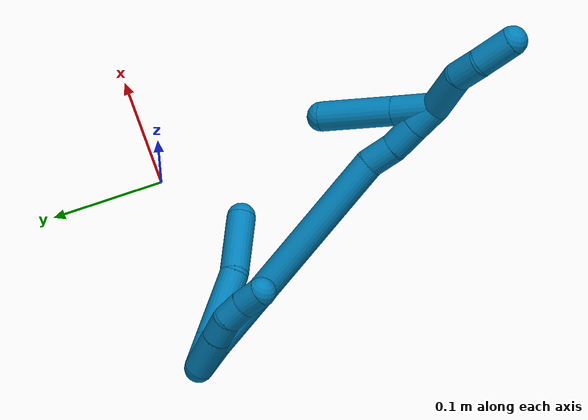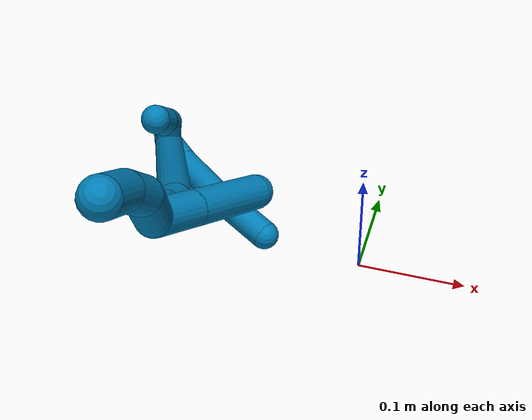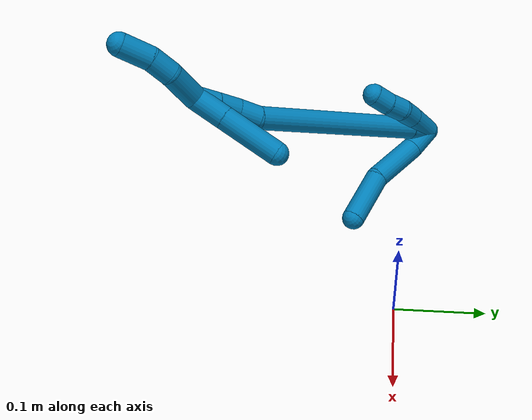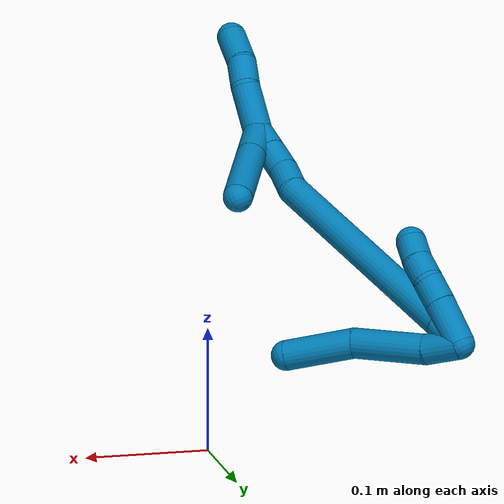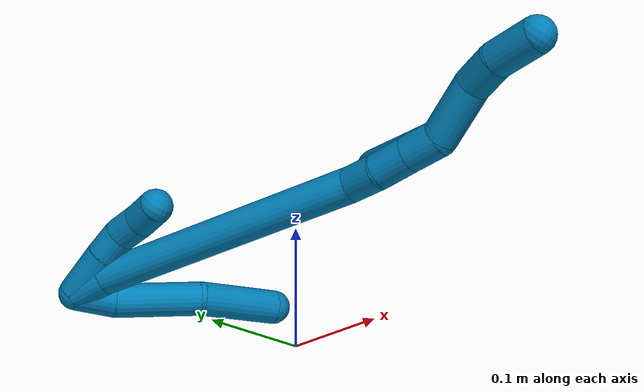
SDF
<sdf version="1.7">
 <world name="default">
  <model name="9">
   <static>0</static>
   <link name="9">
    <collision name="collision-cylinder-e_1_2_8">
     <pose>0.011953 -0.007561 0.00448 1.0359 0.936788 0.561398</pose>
     <geometry><cylinder><radius>0.0125</radius><length>0.029672</length></cylinder></geometry>
     <surface>
      <friction><ode><mu>1.16</mu><mu2>1.16</mu2><slip1>0</slip1><slip2>0</slip2></ode></friction>
      <contact><ode><kp>1e+06</kp><kd>1</kd><max_vel>0</max_vel><min_depth>0.001</min_depth></ode></contact>
     </surface>
    </collision>
    <visual name="visual-cylinder-e_1_2_8">
     <pose>0.011953 -0.007561 0.00448 1.0359 0.936788 0.561398</pose>
     <geometry><cylinder><radius>0.0125</radius><length>0.029672</length></cylinder></geometry>
     <material><ambient>0 0.490196 0.709804 1</ambient></material>
    </visual>
    <collision name="collision-cylinder-e_2_8_9">
     <pose>0.046603 -0.029372 0.025018 0.725815 0.81319 0.324143</pose>
     <geometry><cylinder><radius>0.0125</radius><length>0.062485</length></cylinder></geometry>
     <surface>
      <friction><ode><mu>1.16</mu><mu2>1.16</mu2><slip1>0</slip1><slip2>0</slip2></ode></friction>
      <contact><ode><kp>1e+06</kp><kd>1</kd><max_vel>0</max_vel><min_depth>0.001</min_depth></ode></contact>
     </surface>
    </collision>
    <visual name="visual-cylinder-e_2_8_9">
     <pose>0.046603 -0.029372 0.025018 0.725815 0.81319 0.324143</pose>
     <geometry><cylinder><radius>0.0125</radius><length>0.062485</length></cylinder></geometry>
     <material><ambient>0 0.490196 0.709804 1</ambient></material>
    </visual>
    <collision name="collision-cylinder-e_3_9_6">
     <pose>0.095267 -0.053399 0.049236 0.875331 1.11486 0.567644</pose>
     <geometry><cylinder><radius>0.0125</radius><length>0.057843</length></cylinder></geometry>
     <surface>
      <friction><ode><mu>1.16</mu><mu2>1.16</mu2><slip1>0</slip1><slip2>0</slip2></ode></friction>
      <contact><ode><kp>1e+06</kp><kd>1</kd><max_vel>0</max_vel><min_depth>0.001</min_depth></ode></contact>
     </surface>
    </collision>
    <visual name="visual-cylinder-e_3_9_6">
     <pose>0.095267 -0.053399 0.049236 0.875331 1.11486 0.567644</pose>
     <geometry><cylinder><radius>0.0125</radius><length>0.057843</length></cylinder></geometry>
     <material><ambient>0 0.490196 0.709804 1</ambient></material>
    </visual>
    <collision name="collision-cylinder-e_1_2_10">
     <pose>-0.000402 -0.002097 0.018752 0.111338 -0.021299 -0.001187</pose>
     <geometry><cylinder><radius>0.0125</radius><length>0.037747</length></cylinder></geometry>
     <surface>
      <friction><ode><mu>1.16</mu><mu2>1.16</mu2><slip1>0</slip1><slip2>0</slip2></ode></friction>
      <contact><ode><kp>1e+06</kp><kd>1</kd><max_vel>0</max_vel><min_depth>0.001</min_depth></ode></contact>
     </surface>
    </collision>
    <visual name="visual-cylinder-e_1_2_10">
     <pose>-0.000402 -0.002097 0.018752 0.111338 -0.021299 -0.001187</pose>
     <geometry><cylinder><radius>0.0125</radius><length>0.037747</length></cylinder></geometry>
     <material><ambient>0 0.490196 0.709804 1</ambient></material>
    </visual>
    <collision name="collision-cylinder-e_2_10_11">
     <pose>-0.000648 -0.005617 0.04779 0.137528 0.014988 0.001032</pose>
     <geometry><cylinder><radius>0.0125</radius><length>0.02077</length></cylinder></geometry>
     <surface>
      <friction><ode><mu>1.16</mu><mu2>1.16</mu2><slip1>0</slip1><slip2>0</slip2></ode></friction>
      <contact><ode><kp>1e+06</kp><kd>1</kd><max_vel>0</max_vel><min_depth>0.001</min_depth></ode></contact>
     </surface>
    </collision>
    <visual name="visual-cylinder-e_2_10_11">
     <pose>-0.000648 -0.005617 0.04779 0.137528 0.014988 0.001032</pose>
     <geometry><cylinder><radius>0.0125</radius><length>0.02077</length></cylinder></geometry>
     <material><ambient>0 0.490196 0.709804 1</ambient></material>
    </visual>
    <collision name="collision-cylinder-e_3_11_12">
     <pose>-0.000904 -0.01164 0.067454 0.455961 -0.039359 -0.009133</pose>
     <geometry><cylinder><radius>0.0125</radius><length>0.020907</length></cylinder></geometry>
     <surface>
      <friction><ode><mu>1.16</mu><mu2>1.16</mu2><slip1>0</slip1><slip2>0</slip2></ode></friction>
      <contact><ode><kp>1e+06</kp><kd>1</kd><max_vel>0</max_vel><min_depth>0.001</min_depth></ode></contact>
     </surface>
    </collision>
    <visual name="visual-cylinder-e_3_11_12">
     <pose>-0.000904 -0.01164 0.067454 0.455961 -0.039359 -0.009133</pose>
     <geometry><cylinder><radius>0.0125</radius><length>0.020907</length></cylinder></geometry>
     <material><ambient>0 0.490196 0.709804 1</ambient></material>
    </visual>
    <collision name="collision-cylinder-e_4_12_5">
     <pose>-0.003275 -0.020824 0.085832 0.471266 -0.19165 -0.046147</pose>
     <geometry><cylinder><radius>0.0125</radius><length>0.020576</length></cylinder></geometry>
     <surface>
      <friction><ode><mu>1.16</mu><mu2>1.16</mu2><slip1>0</slip1><slip2>0</slip2></ode></friction>
      <contact><ode><kp>1e+06</kp><kd>1</kd><max_vel>0</max_vel><min_depth>0.001</min_depth></ode></contact>
     </surface>
    </collision>
    <visual name="visual-cylinder-e_4_12_5">
     <pose>-0.003275 -0.020824 0.085832 0.471266 -0.19165 -0.046147</pose>
     <geometry><cylinder><radius>0.0125</radius><length>0.020576</length></cylinder></geometry>
     <material><ambient>0 0.490196 0.709804 1</ambient></material>
    </visual>
    <collision name="collision-cylinder-e_1_2_13">
     <pose>0.002628 -0.005694 0.011855 0.447805 0.197228 0.045051</pose>
     <geometry><cylinder><radius>0.0125</radius><length>0.026823</length></cylinder></geometry>
     <surface>
      <friction><ode><mu>1.16</mu><mu2>1.16</mu2><slip1>0</slip1><slip2>0</slip2></ode></friction>
      <contact><ode><kp>1e+06</kp><kd>1</kd><max_vel>0</max_vel><min_depth>0.001</min_depth></ode></contact>
     </surface>
    </collision>
    <visual name="visual-cylinder-e_1_2_13">
     <pose>0.002628 -0.005694 0.011855 0.447805 0.197228 0.045051</pose>
     <geometry><cylinder><radius>0.0125</radius><length>0.026823</length></cylinder></geometry>
     <material><ambient>0 0.490196 0.709804 1</ambient></material>
    </visual>
    <collision name="collision-cylinder-e_2_13_14">
     <pose>0.027338 -0.062555 0.10609 0.555787 0.223885 0.064115</pose>
     <geometry><cylinder><radius>0.0125</radius><length>0.198918</length></cylinder></geometry>
     <surface>
      <friction><ode><mu>1.16</mu><mu2>1.16</mu2><slip1>0</slip1><slip2>0</slip2></ode></friction>
      <contact><ode><kp>1e+06</kp><kd>1</kd><max_vel>0</max_vel><min_depth>0.001</min_depth></ode></contact>
     </surface>
    </collision>
    <visual name="visual-cylinder-e_2_13_14">
     <pose>0.027338 -0.062555 0.10609 0.555787 0.223885 0.064115</pose>
     <geometry><cylinder><radius>0.0125</radius><length>0.198918</length></cylinder></geometry>
     <material><ambient>0 0.490196 0.709804 1</ambient></material>
    </visual>
    <collision name="collision-cylinder-e_3_14_15">
     <pose>0.048226 -0.121057 0.198541 0.629571 -0.095491 -0.031114</pose>
     <geometry><cylinder><radius>0.0125</radius><length>0.025033</length></cylinder></geometry>
     <surface>
      <friction><ode><mu>1.16</mu><mu2>1.16</mu2><slip1>0</slip1><slip2>0</slip2></ode></friction>
      <contact><ode><kp>1e+06</kp><kd>1</kd><max_vel>0</max_vel><min_depth>0.001</min_depth></ode></contact>
     </surface>
    </collision>
    <visual name="visual-cylinder-e_3_14_15">
     <pose>0.048226 -0.121057 0.198541 0.629571 -0.095491 -0.031114</pose>
     <geometry><cylinder><radius>0.0125</radius><length>0.025033</length></cylinder></geometry>
     <material><ambient>0 0.490196 0.709804 1</ambient></material>
    </visual>
    <collision name="collision-cylinder-e_4_15_16">
     <pose>0.047501 -0.134278 0.219591 0.492021 0.03753 0.009425</pose>
     <geometry><cylinder><radius>0.0125</radius><length>0.024932</length></cylinder></geometry>
     <surface>
      <friction><ode><mu>1.16</mu><mu2>1.16</mu2><slip1>0</slip1><slip2>0</slip2></ode></friction>
      <contact><ode><kp>1e+06</kp><kd>1</kd><max_vel>0</max_vel><min_depth>0.001</min_depth></ode></contact>
     </surface>
    </collision>
    <visual name="visual-cylinder-e_4_15_16">
     <pose>0.047501 -0.134278 0.219591 0.492021 0.03753 0.009425</pose>
     <geometry><cylinder><radius>0.0125</radius><length>0.024932</length></cylinder></geometry>
     <material><ambient>0 0.490196 0.709804 1</ambient></material>
    </visual>
    <collision name="collision-cylinder-e_5_16_1">
     <pose>0.048419 -0.146099 0.241159 0.510966 0.037112 0.009694</pose>
     <geometry><cylinder><radius>0.0125</radius><length>0.024294</length></cylinder></geometry>
     <surface>
      <friction><ode><mu>1.16</mu><mu2>1.16</mu2><slip1>0</slip1><slip2>0</slip2></ode></friction>
      <contact><ode><kp>1e+06</kp><kd>1</kd><max_vel>0</max_vel><min_depth>0.001</min_depth></ode></contact>
     </surface>
    </collision>
    <visual name="visual-cylinder-e_5_16_1">
     <pose>0.048419 -0.146099 0.241159 0.510966 0.037112 0.009694</pose>
     <geometry><cylinder><radius>0.0125</radius><length>0.024294</length></cylinder></geometry>
     <material><ambient>0 0.490196 0.709804 1</ambient></material>
    </visual>
    <collision name="collision-cylinder-e_1_1_17">
     <pose>0.045124 -0.153522 0.272144 0.072776 -0.181142 -0.006612</pose>
     <geometry><cylinder><radius>0.0125</radius><length>0.041581</length></cylinder></geometry>
     <surface>
      <friction><ode><mu>1.16</mu><mu2>1.16</mu2><slip1>0</slip1><slip2>0</slip2></ode></friction>
      <contact><ode><kp>1e+06</kp><kd>1</kd><max_vel>0</max_vel><min_depth>0.001</min_depth></ode></contact>
     </surface>
    </collision>
    <visual name="visual-cylinder-e_1_1_17">
     <pose>0.045124 -0.153522 0.272144 0.072776 -0.181142 -0.006612</pose>
     <geometry><cylinder><radius>0.0125</radius><length>0.041581</length></cylinder></geometry>
     <material><ambient>0 0.490196 0.709804 1</ambient></material>
    </visual>
    <collision name="collision-cylinder-e_2_17_18">
     <pose>0.037584 -0.159664 0.303655 0.396639 -0.305036 -0.061761</pose>
     <geometry><cylinder><radius>0.0125</radius><length>0.025267</length></cylinder></geometry>
     <surface>
      <friction><ode><mu>1.16</mu><mu2>1.16</mu2><slip1>0</slip1><slip2>0</slip2></ode></friction>
      <contact><ode><kp>1e+06</kp><kd>1</kd><max_vel>0</max_vel><min_depth>0.001</min_depth></ode></contact>
     </surface>
    </collision>
    <visual name="visual-cylinder-e_2_17_18">
     <pose>0.037584 -0.159664 0.303655 0.396639 -0.305036 -0.061761</pose>
     <geometry><cylinder><radius>0.0125</radius><length>0.025267</length></cylinder></geometry>
     <material><ambient>0 0.490196 0.709804 1</ambient></material>
    </visual>
    <collision name="collision-cylinder-e_3_18_4">
     <pose>0.031514 -0.173122 0.328629 0.565833 -0.137737 -0.0401</pose>
     <geometry><cylinder><radius>0.0125</radius><length>0.033151</length></cylinder></geometry>
     <surface>
      <friction><ode><mu>1.16</mu><mu2>1.16</mu2><slip1>0</slip1><slip2>0</slip2></ode></friction>
      <contact><ode><kp>1e+06</kp><kd>1</kd><max_vel>0</max_vel><min_depth>0.001</min_depth></ode></contact>
     </surface>
    </collision>
    <visual name="visual-cylinder-e_3_18_4">
     <pose>0.031514 -0.173122 0.328629 0.565833 -0.137737 -0.0401</pose>
     <geometry><cylinder><radius>0.0125</radius><length>0.033151</length></cylinder></geometry>
     <material><ambient>0 0.490196 0.709804 1</ambient></material>
    </visual>
    <collision name="collision-cylinder-e_1_1_19">
     <pose>0.057657 -0.140071 0.241821 -2.2634 0.514477 -1.02113</pose>
     <geometry><cylinder><radius>0.0125</radius><length>0.035715</length></cylinder></geometry>
     <surface>
      <friction><ode><mu>1.16</mu><mu2>1.16</mu2><slip1>0</slip1><slip2>0</slip2></ode></friction>
      <contact><ode><kp>1e+06</kp><kd>1</kd><max_vel>0</max_vel><min_depth>0.001</min_depth></ode></contact>
     </surface>
    </collision>
    <visual name="visual-cylinder-e_1_1_19">
     <pose>0.057657 -0.140071 0.241821 -2.2634 0.514477 -1.02113</pose>
     <geometry><cylinder><radius>0.0125</radius><length>0.035715</length></cylinder></geometry>
     <material><ambient>0 0.490196 0.709804 1</ambient></material>
    </visual>
    <collision name="collision-cylinder-e_2_19_3">
     <pose>0.082285 -0.10647 0.214174 -2.25698 0.515345 -1.01555</pose>
     <geometry><cylinder><radius>0.0125</radius><length>0.064285</length></cylinder></geometry>
     <surface>
      <friction><ode><mu>1.16</mu><mu2>1.16</mu2><slip1>0</slip1><slip2>0</slip2></ode></friction>
      <contact><ode><kp>1e+06</kp><kd>1</kd><max_vel>0</max_vel><min_depth>0.001</min_depth></ode></contact>
     </surface>
    </collision>
    <visual name="visual-cylinder-e_2_19_3">
     <pose>0.082285 -0.10647 0.214174 -2.25698 0.515345 -1.01555</pose>
     <geometry><cylinder><radius>0.0125</radius><length>0.064285</length></cylinder></geometry>
     <material><ambient>0 0.490196 0.709804 1</ambient></material>
    </visual>
    <collision name="collision-sphere-3">
     <pose>0.098126 -0.084832 0.196453 0 -0 0</pose>
     <geometry><sphere><radius>0.0125</radius></sphere></geometry>
     <surface>
      <friction><ode><mu>1.16</mu><mu2>1.16</mu2><slip1>0</slip1><slip2>0</slip2></ode></friction>
      <contact><ode><kp>1e+06</kp><kd>1</kd><max_vel>0</max_vel><min_depth>0.001</min_depth></ode></contact>
     </surface>
    </collision>
    <visual name="visual-sphere-3">
     <pose>0.098126 -0.084832 0.196453 0 -0 0</pose>
     <geometry><sphere><radius>0.0125</radius></sphere></geometry>
     <material><ambient>0 0.490196 0.709804 1</ambient></material>
    </visual>
    <collision name="collision-sphere-19">
     <pose>0.066444 -0.128108 0.231894 0 -0 0</pose>
     <geometry><sphere><radius>0.0125</radius></sphere></geometry>
     <surface>
      <friction><ode><mu>1.16</mu><mu2>1.16</mu2><slip1>0</slip1><slip2>0</slip2></ode></friction>
      <contact><ode><kp>1e+06</kp><kd>1</kd><max_vel>0</max_vel><min_depth>0.001</min_depth></ode></contact>
     </surface>
    </collision>
    <visual name="visual-sphere-19">
     <pose>0.066444 -0.128108 0.231894 0 -0 0</pose>
     <geometry><sphere><radius>0.0125</radius></sphere></geometry>
     <material><ambient>0 0.490196 0.709804 1</ambient></material>
    </visual>
    <collision name="collision-sphere-11">
     <pose>-0.000493 -0.00704 0.058076 0 -0 0</pose>
     <geometry><sphere><radius>0.0125</radius></sphere></geometry>
     <surface>
      <friction><ode><mu>1.16</mu><mu2>1.16</mu2><slip1>0</slip1><slip2>0</slip2></ode></friction>
      <contact><ode><kp>1e+06</kp><kd>1</kd><max_vel>0</max_vel><min_depth>0.001</min_depth></ode></contact>
     </surface>
    </collision>
    <visual name="visual-sphere-11">
     <pose>-0.000493 -0.00704 0.058076 0 -0 0</pose>
     <geometry><sphere><radius>0.0125</radius></sphere></geometry>
     <material><ambient>0 0.490196 0.709804 1</ambient></material>
    </visual>
    <collision name="collision-sphere-10">
     <pose>-0.000804 -0.004193 0.037505 0 -0 0</pose>
     <geometry><sphere><radius>0.0125</radius></sphere></geometry>
     <surface>
      <friction><ode><mu>1.16</mu><mu2>1.16</mu2><slip1>0</slip1><slip2>0</slip2></ode></friction>
      <contact><ode><kp>1e+06</kp><kd>1</kd><max_vel>0</max_vel><min_depth>0.001</min_depth></ode></contact>
     </surface>
    </collision>
    <visual name="visual-sphere-10">
     <pose>-0.000804 -0.004193 0.037505 0 -0 0</pose>
     <geometry><sphere><radius>0.0125</radius></sphere></geometry>
     <material><ambient>0 0.490196 0.709804 1</ambient></material>
    </visual>
    <collision name="collision-sphere-6">
     <pose>0.121234 -0.063176 0.057395 0 -0 0</pose>
     <geometry><sphere><radius>0.0125</radius></sphere></geometry>
     <surface>
      <friction><ode><mu>1.16</mu><mu2>1.16</mu2><slip1>0</slip1><slip2>0</slip2></ode></friction>
      <contact><ode><kp>1e+06</kp><kd>1</kd><max_vel>0</max_vel><min_depth>0.001</min_depth></ode></contact>
     </surface>
    </collision>
    <visual name="visual-sphere-6">
     <pose>0.121234 -0.063176 0.057395 0 -0 0</pose>
     <geometry><sphere><radius>0.0125</radius></sphere></geometry>
     <material><ambient>0 0.490196 0.709804 1</ambient></material>
    </visual>
    <collision name="collision-sphere-9">
     <pose>0.0693 -0.043623 0.041077 0 -0 0</pose>
     <geometry><sphere><radius>0.0125</radius></sphere></geometry>
     <surface>
      <friction><ode><mu>1.16</mu><mu2>1.16</mu2><slip1>0</slip1><slip2>0</slip2></ode></friction>
      <contact><ode><kp>1e+06</kp><kd>1</kd><max_vel>0</max_vel><min_depth>0.001</min_depth></ode></contact>
     </surface>
    </collision>
    <visual name="visual-sphere-9">
     <pose>0.0693 -0.043623 0.041077 0 -0 0</pose>
     <geometry><sphere><radius>0.0125</radius></sphere></geometry>
     <material><ambient>0 0.490196 0.709804 1</ambient></material>
    </visual>
    <collision name="collision-sphere-2">
     <geometry><sphere><radius>0.0125</radius></sphere></geometry>
     <surface>
      <friction><ode><mu>1.16</mu><mu2>1.16</mu2><slip1>0</slip1><slip2>0</slip2></ode></friction>
      <contact><ode><kp>1e+06</kp><kd>1</kd><max_vel>0</max_vel><min_depth>0.001</min_depth></ode></contact>
     </surface>
    </collision>
    <visual name="visual-sphere-2">
     <geometry><sphere><radius>0.0125</radius></sphere></geometry>
     <material><ambient>0 0.490196 0.709804 1</ambient></material>
    </visual>
    <collision name="collision-sphere-8">
     <pose>0.023906 -0.015122 0.00896 0 -0 0</pose>
     <geometry><sphere><radius>0.0125</radius></sphere></geometry>
     <surface>
      <friction><ode><mu>1.16</mu><mu2>1.16</mu2><slip1>0</slip1><slip2>0</slip2></ode></friction>
      <contact><ode><kp>1e+06</kp><kd>1</kd><max_vel>0</max_vel><min_depth>0.001</min_depth></ode></contact>
     </surface>
    </collision>
    <visual name="visual-sphere-8">
     <pose>0.023906 -0.015122 0.00896 0 -0 0</pose>
     <geometry><sphere><radius>0.0125</radius></sphere></geometry>
     <material><ambient>0 0.490196 0.709804 1</ambient></material>
    </visual>
    <collision name="collision-sphere-12">
     <pose>-0.001315 -0.016239 0.076833 0 -0 0</pose>
     <geometry><sphere><radius>0.0125</radius></sphere></geometry>
     <surface>
      <friction><ode><mu>1.16</mu><mu2>1.16</mu2><slip1>0</slip1><slip2>0</slip2></ode></friction>
      <contact><ode><kp>1e+06</kp><kd>1</kd><max_vel>0</max_vel><min_depth>0.001</min_depth></ode></contact>
     </surface>
    </collision>
    <visual name="visual-sphere-12">
     <pose>-0.001315 -0.016239 0.076833 0 -0 0</pose>
     <geometry><sphere><radius>0.0125</radius></sphere></geometry>
     <material><ambient>0 0.490196 0.709804 1</ambient></material>
    </visual>
    <collision name="collision-sphere-5">
     <pose>-0.005235 -0.02541 0.09483 0 -0 0</pose>
     <geometry><sphere><radius>0.0125</radius></sphere></geometry>
     <surface>
      <friction><ode><mu>1.16</mu><mu2>1.16</mu2><slip1>0</slip1><slip2>0</slip2></ode></friction>
      <contact><ode><kp>1e+06</kp><kd>1</kd><max_vel>0</max_vel><min_depth>0.001</min_depth></ode></contact>
     </surface>
    </collision>
    <visual name="visual-sphere-5">
     <pose>-0.005235 -0.02541 0.09483 0 -0 0</pose>
     <geometry><sphere><radius>0.0125</radius></sphere></geometry>
     <material><ambient>0 0.490196 0.709804 1</ambient></material>
    </visual>
    <collision name="collision-sphere-13">
     <pose>0.005256 -0.011389 0.023709 0 -0 0</pose>
     <geometry><sphere><radius>0.0125</radius></sphere></geometry>
     <surface>
      <friction><ode><mu>1.16</mu><mu2>1.16</mu2><slip1>0</slip1><slip2>0</slip2></ode></friction>
      <contact><ode><kp>1e+06</kp><kd>1</kd><max_vel>0</max_vel><min_depth>0.001</min_depth></ode></contact>
     </surface>
    </collision>
    <visual name="visual-sphere-13">
     <pose>0.005256 -0.011389 0.023709 0 -0 0</pose>
     <geometry><sphere><radius>0.0125</radius></sphere></geometry>
     <material><ambient>0 0.490196 0.709804 1</ambient></material>
    </visual>
    <collision name="collision-sphere-14">
     <pose>0.04942 -0.113721 0.18847 0 -0 0</pose>
     <geometry><sphere><radius>0.0125</radius></sphere></geometry>
     <surface>
      <friction><ode><mu>1.16</mu><mu2>1.16</mu2><slip1>0</slip1><slip2>0</slip2></ode></friction>
      <contact><ode><kp>1e+06</kp><kd>1</kd><max_vel>0</max_vel><min_depth>0.001</min_depth></ode></contact>
     </surface>
    </collision>
    <visual name="visual-sphere-14">
     <pose>0.04942 -0.113721 0.18847 0 -0 0</pose>
     <geometry><sphere><radius>0.0125</radius></sphere></geometry>
     <material><ambient>0 0.490196 0.709804 1</ambient></material>
    </visual>
    <collision name="collision-sphere-15">
     <pose>0.047033 -0.128393 0.208612 0 -0 0</pose>
     <geometry><sphere><radius>0.0125</radius></sphere></geometry>
     <surface>
      <friction><ode><mu>1.16</mu><mu2>1.16</mu2><slip1>0</slip1><slip2>0</slip2></ode></friction>
      <contact><ode><kp>1e+06</kp><kd>1</kd><max_vel>0</max_vel><min_depth>0.001</min_depth></ode></contact>
     </surface>
    </collision>
    <visual name="visual-sphere-15">
     <pose>0.047033 -0.128393 0.208612 0 -0 0</pose>
     <geometry><sphere><radius>0.0125</radius></sphere></geometry>
     <material><ambient>0 0.490196 0.709804 1</ambient></material>
    </visual>
    <collision name="collision-sphere-16">
     <pose>0.047968 -0.140163 0.230571 0 -0 0</pose>
     <geometry><sphere><radius>0.0125</radius></sphere></geometry>
     <surface>
      <friction><ode><mu>1.16</mu><mu2>1.16</mu2><slip1>0</slip1><slip2>0</slip2></ode></friction>
      <contact><ode><kp>1e+06</kp><kd>1</kd><max_vel>0</max_vel><min_depth>0.001</min_depth></ode></contact>
     </surface>
    </collision>
    <visual name="visual-sphere-16">
     <pose>0.047968 -0.140163 0.230571 0 -0 0</pose>
     <geometry><sphere><radius>0.0125</radius></sphere></geometry>
     <material><ambient>0 0.490196 0.709804 1</ambient></material>
    </visual>
    <collision name="collision-sphere-1">
     <pose>0.04887 -0.152035 0.251747 0 -0 0</pose>
     <geometry><sphere><radius>0.0125</radius></sphere></geometry>
     <surface>
      <friction><ode><mu>1.16</mu><mu2>1.16</mu2><slip1>0</slip1><slip2>0</slip2></ode></friction>
      <contact><ode><kp>1e+06</kp><kd>1</kd><max_vel>0</max_vel><min_depth>0.001</min_depth></ode></contact>
     </surface>
    </collision>
    <visual name="visual-sphere-1">
     <pose>0.04887 -0.152035 0.251747 0 -0 0</pose>
     <geometry><sphere><radius>0.0125</radius></sphere></geometry>
     <material><ambient>0 0.490196 0.709804 1</ambient></material>
    </visual>
    <collision name="collision-sphere-18">
     <pose>0.03379 -0.16432 0.31477 0 -0 0</pose>
     <geometry><sphere><radius>0.0125</radius></sphere></geometry>
     <surface>
      <friction><ode><mu>1.16</mu><mu2>1.16</mu2><slip1>0</slip1><slip2>0</slip2></ode></friction>
      <contact><ode><kp>1e+06</kp><kd>1</kd><max_vel>0</max_vel><min_depth>0.001</min_depth></ode></contact>
     </surface>
    </collision>
    <visual name="visual-sphere-18">
     <pose>0.03379 -0.16432 0.31477 0 -0 0</pose>
     <geometry><sphere><radius>0.0125</radius></sphere></geometry>
     <material><ambient>0 0.490196 0.709804 1</ambient></material>
    </visual>
    <collision name="collision-sphere-17">
     <pose>0.041379 -0.155009 0.29254 0 -0 0</pose>
     <geometry><sphere><radius>0.0125</radius></sphere></geometry>
     <surface>
      <friction><ode><mu>1.16</mu><mu2>1.16</mu2><slip1>0</slip1><slip2>0</slip2></ode></friction>
      <contact><ode><kp>1e+06</kp><kd>1</kd><max_vel>0</max_vel><min_depth>0.001</min_depth></ode></contact>
     </surface>
    </collision>
    <visual name="visual-sphere-17">
     <pose>0.041379 -0.155009 0.29254 0 -0 0</pose>
     <geometry><sphere><radius>0.0125</radius></sphere></geometry>
     <material><ambient>0 0.490196 0.709804 1</ambient></material>
    </visual>
    <collision name="collision-sphere-4">
     <pose>0.029238 -0.181925 0.342489 0 -0 0</pose>
     <geometry><sphere><radius>0.0125</radius></sphere></geometry>
     <surface>
      <friction><ode><mu>1.16</mu><mu2>1.16</mu2><slip1>0</slip1><slip2>0</slip2></ode></friction>
      <contact><ode><kp>1e+06</kp><kd>1</kd><max_vel>0</max_vel><min_depth>0.001</min_depth></ode></contact>
     </surface>
    </collision>
    <visual name="visual-sphere-4">
     <pose>0.029238 -0.181925 0.342489 0 -0 0</pose>
     <geometry><sphere><radius>0.0125</radius></sphere></geometry>
     <material><ambient>0 0.490196 0.709804 1</ambient></material>
    </visual>
    <inertial>
     <pose>0.038611 -0.075392 0.132578 0 -0 0</pose>
     <mass>0.75</mass>
     <inertia>
      <ixx>0.000761</ixx>
      <ixy>0</ixy>
      <ixz>0</ixz>
      <iyy>0.000652</iyy>
      <iyz>0</iyz>
      <izz>0.000189</izz>
     </inertia>
    </inertial>
   </link>
   <pose>-0.198827 0.032358 0.083573 0.447946 0.371477 0.009287</pose>
  </model>
 </world>
</sdf>
